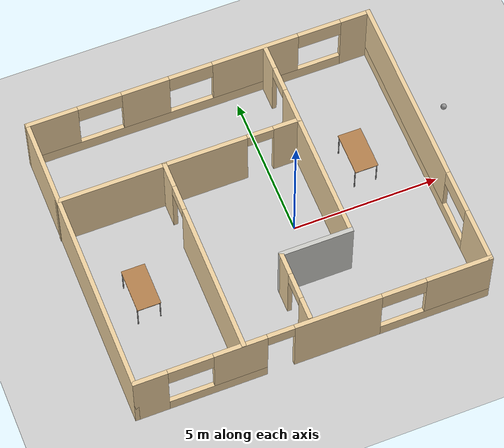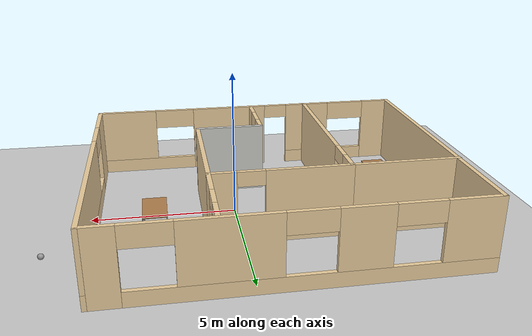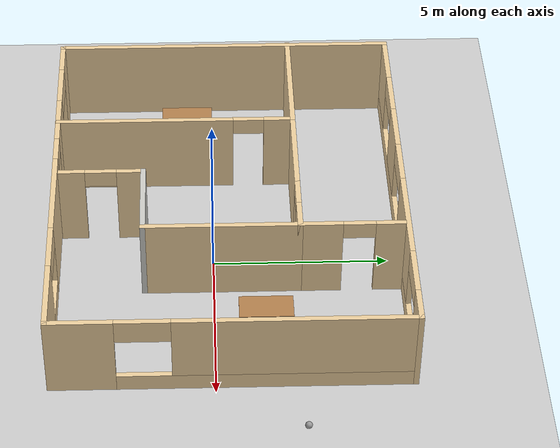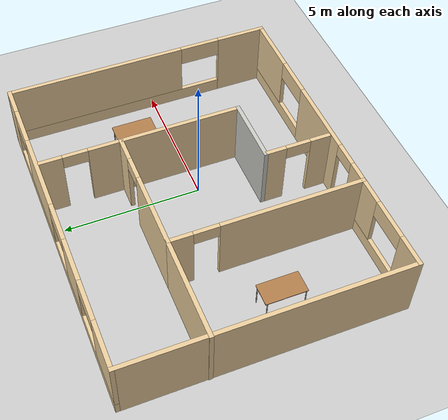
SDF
<sdf version="1.6">
 <world name="default">
  <plugin name="welcome_message" filename="libwelcome_message.so"/>
  <light name="sun" type="directional">
   <pose>0 0 10 0 -0 0</pose>
   <diffuse>0.8 0.8 0.8 1</diffuse>
   <specular>0.2 0.2 0.2 1</specular>
   <attenuation>
    <range>1000</range>
    <constant>0.9</constant>
    <linear>0.01</linear>
    <quadratic>0.001</quadratic>
   </attenuation>
   <direction>-0.5 0.1 -0.9</direction>
  </light>
  <model name="ground_plane">
   <static>1</static>
   <link name="link">
    <collision name="collision">
     <geometry><plane><normal>0 0 1</normal><size>100 100</size></plane></geometry>
     <surface><friction><ode><mu>100</mu><mu2>50</mu2></ode></friction></surface>
    </collision>
    <visual name="visual">
     <cast_shadows>0</cast_shadows>
     <geometry><plane><normal>0 0 1</normal><size>100 100</size></plane></geometry>
     <material>
      <script><uri>file://media/materials/scripts/gazebo.material</uri><name>Gazebo/Grey</name></script>
     </material>
    </visual>
   </link>
  </model>
  <gravity>0 0 -9.8</gravity>
  <magnetic_field>6e-06 2.3e-05 -4.2e-05</magnetic_field>
  <atmosphere type="adiabatic"/>
  <physics name="default_physics" default="0" type="ode">
   <max_step_size>0.001</max_step_size>
   <real_time_factor>1</real_time_factor>
   <real_time_update_rate>1000</real_time_update_rate>
  </physics>
  <scene><ambient>0.4 0.4 0.4 1</ambient><background>0.7 0.7 0.7 1</background><shadows>1</shadows></scene>
  <spherical_coordinates>
   <surface_model>EARTH_WGS84</surface_model>
   <latitude_deg>0</latitude_deg>
   <longitude_deg>0</longitude_deg>
   <elevation>0</elevation>
   <heading_deg>0</heading_deg>
  </spherical_coordinates>
  <model name="Building">
   <pose>-1.17107 0.46113 0 0 -0 0</pose>
   <link name="Wall_10">
    <pose>-2.33489 -1.48554 0 0 -0 1.5708</pose>
    <visual name="Wall_10_Visual_0">
     <pose>-0.911827 0 1.25 0 -0 0</pose>
     <geometry><box><size>5.17635 0.15 2.5</size></box></geometry>
     <material>
      <script><uri>file://media/materials/scripts/gazebo.material</uri><name>Gazebo/Grey</name></script>
      <ambient>0.921569 0.807843 0.615686 1</ambient>
     </material>
     <meta><layer>0</layer></meta>
    </visual>
    <collision name="Wall_10_Collision_0">
     <geometry><box><size>5.17635 0.15 2.5</size></box></geometry>
     <pose>-0.911827 0 1.25 0 -0 0</pose>
    </collision>
    <visual name="Wall_10_Visual_1">
     <pose>3.03817 0 1.25 0 -0 0</pose>
     <geometry><box><size>0.923654 0.15 2.5</size></box></geometry>
     <material>
      <script><uri>file://media/materials/scripts/gazebo.material</uri><name>Gazebo/Grey</name></script>
      <ambient>0.921569 0.807843 0.615686 1</ambient>
     </material>
     <meta><layer>0</layer></meta>
    </visual>
    <collision name="Wall_10_Collision_1">
     <geometry><box><size>0.923654 0.15 2.5</size></box></geometry>
     <pose>3.03817 0 1.25 0 -0 0</pose>
    </collision>
    <visual name="Wall_10_Visual_2">
     <pose>2.12635 0 2.25 0 -0 0</pose>
     <geometry><box><size>0.9 0.15 0.5</size></box></geometry>
     <material>
      <script><uri>file://media/materials/scripts/gazebo.material</uri><name>Gazebo/Grey</name></script>
      <ambient>0.921569 0.807843 0.615686 1</ambient>
     </material>
     <meta><layer>0</layer></meta>
    </visual>
    <collision name="Wall_10_Collision_2">
     <geometry><box><size>0.9 0.15 0.5</size></box></geometry>
     <pose>2.12635 0 2.25 0 -0 0</pose>
    </collision>
   </link>
   <link name="Wall_11">
    <collision name="Wall_11_Collision">
     <geometry><box><size>3.75 0.15 2.5</size></box></geometry>
     <pose>0 0 1.25 0 -0 0</pose>
    </collision>
    <visual name="Wall_11_Visual">
     <pose>0 0 1.25 0 -0 0</pose>
     <geometry><box><size>3.75 0.15 2.5</size></box></geometry>
     <material>
      <script><uri>file://media/materials/scripts/gazebo.material</uri><name>Gazebo/Grey</name></script>
      <ambient>0.921569 0.807843 0.615686 1</ambient>
     </material>
     <meta><layer>0</layer></meta>
    </visual>
    <pose>-4.13489 1.93946 0 0 -0 3.14159</pose>
   </link>
   <link name="Wall_13">
    <pose>-0.034892 1.93946 0 0 -0 0</pose>
    <visual name="Wall_13_Visual_0">
     <pose>-0.933301 0 1.25 0 -0 0</pose>
     <geometry><box><size>2.8834 0.15 2.5</size></box></geometry>
     <material>
      <script><uri>file://media/materials/scripts/gazebo.material</uri><name>Gazebo/Grey</name></script>
      <ambient>0.921569 0.807843 0.615686 1</ambient>
     </material>
     <meta><layer>0</layer></meta>
    </visual>
    <collision name="Wall_13_Collision_0">
     <geometry><box><size>2.8834 0.15 2.5</size></box></geometry>
     <pose>-0.933301 0 1.25 0 -0 0</pose>
    </collision>
    <visual name="Wall_13_Visual_1">
     <pose>1.8917 0 1.25 0 -0 0</pose>
     <geometry><box><size>0.966602 0.15 2.5</size></box></geometry>
     <material>
      <script><uri>file://media/materials/scripts/gazebo.material</uri><name>Gazebo/Grey</name></script>
      <ambient>0.921569 0.807843 0.615686 1</ambient>
     </material>
     <meta><layer>0</layer></meta>
    </visual>
    <collision name="Wall_13_Collision_1">
     <geometry><box><size>0.966602 0.15 2.5</size></box></geometry>
     <pose>1.8917 0 1.25 0 -0 0</pose>
    </collision>
    <visual name="Wall_13_Visual_2">
     <pose>0.958398 0 2.25 0 -0 0</pose>
     <geometry><box><size>0.9 0.15 0.5</size></box></geometry>
     <material>
      <script><uri>file://media/materials/scripts/gazebo.material</uri><name>Gazebo/Grey</name></script>
      <ambient>0.921569 0.807843 0.615686 1</ambient>
     </material>
     <meta><layer>0</layer></meta>
    </visual>
    <collision name="Wall_13_Collision_2">
     <geometry><box><size>0.9 0.15 0.5</size></box></geometry>
     <pose>0.958398 0 2.25 0 -0 0</pose>
    </collision>
   </link>
   <link name="Wall_14">
    <pose>2.26511 3.36446 0 0 -0 1.5708</pose>
    <visual name="Wall_14_Visual_0">
     <pose>-0.868536 0 1.25 0 -0 0</pose>
     <geometry><box><size>1.26293 0.15 2.5</size></box></geometry>
     <material>
      <script><uri>file://media/materials/scripts/gazebo.material</uri><name>Gazebo/Grey</name></script>
      <ambient>0.921569 0.807843 0.615686 1</ambient>
     </material>
     <meta><layer>0</layer></meta>
    </visual>
    <collision name="Wall_14_Collision_0">
     <geometry><box><size>1.26293 0.15 2.5</size></box></geometry>
     <pose>-0.868536 0 1.25 0 -0 0</pose>
    </collision>
    <visual name="Wall_14_Visual_1">
     <pose>1.08146 0 1.25 0 -0 0</pose>
     <geometry><box><size>0.837073 0.15 2.5</size></box></geometry>
     <material>
      <script><uri>file://media/materials/scripts/gazebo.material</uri><name>Gazebo/Grey</name></script>
      <ambient>0.921569 0.807843 0.615686 1</ambient>
     </material>
     <meta><layer>0</layer></meta>
    </visual>
    <collision name="Wall_14_Collision_1">
     <geometry><box><size>0.837073 0.15 2.5</size></box></geometry>
     <pose>1.08146 0 1.25 0 -0 0</pose>
    </collision>
    <visual name="Wall_14_Visual_2">
     <pose>0.212927 0 2.25 0 -0 0</pose>
     <geometry><box><size>0.9 0.15 0.5</size></box></geometry>
     <material>
      <script><uri>file://media/materials/scripts/gazebo.material</uri><name>Gazebo/Grey</name></script>
      <ambient>0.921569 0.807843 0.615686 1</ambient>
     </material>
     <meta><layer>0</layer></meta>
    </visual>
    <collision name="Wall_14_Collision_2">
     <geometry><box><size>0.9 0.15 0.5</size></box></geometry>
     <pose>0.212927 0 2.25 0 -0 0</pose>
    </collision>
   </link>
   <link name="Wall_16">
    <collision name="Wall_16_Collision">
     <geometry><box><size>4.5 0.15 2.5</size></box></geometry>
     <pose>0 0 1.25 0 -0 0</pose>
    </collision>
    <visual name="Wall_16_Visual">
     <pose>0 0 1.25 0 -0 0</pose>
     <geometry><box><size>4.5 0.15 2.5</size></box></geometry>
     <material>
      <script><uri>file://media/materials/scripts/gazebo.material</uri><name>Gazebo/Grey</name></script>
      <ambient>0.921569 0.807843 0.615686 1</ambient>
     </material>
     <meta><layer>0</layer></meta>
    </visual>
    <pose>2.26511 -0.235537 0 0 0 -1.5708</pose>
   </link>
   <link name="Wall_17">
    <collision name="Wall_17_Collision">
     <geometry><box><size>2.5 0.15 2.5</size></box></geometry>
     <pose>0 0 1.25 0 -0 0</pose>
    </collision>
    <visual name="Wall_17_Visual">
     <pose>0 0 1.25 0 -0 0</pose>
     <geometry><box><size>2.5 0.15 2.5</size></box></geometry>
     <material>
      <script><uri>file://media/materials/scripts/gazebo.material</uri><name>Gazebo/CeilingTiled</name></script>
      <ambient>0.921569 0.807843 0.615686 1</ambient>
     </material>
     <meta><layer>0</layer></meta>
    </visual>
    <pose>1.09011 -2.41054 0 0 -0 3.14159</pose>
   </link>
   <link name="Wall_18">
    <pose>-0.084893 -3.58554 0 0 0 -1.5708</pose>
    <visual name="Wall_18_Visual_0">
     <pose>-0.831134 0 1.25 0 -0 0</pose>
     <geometry><box><size>0.837732 0.15 2.5</size></box></geometry>
     <material>
      <script><uri>file://media/materials/scripts/gazebo.material</uri><name>Gazebo/Grey</name></script>
      <ambient>0.921569 0.807843 0.615686 1</ambient>
     </material>
     <meta><layer>0</layer></meta>
    </visual>
    <collision name="Wall_18_Collision_0">
     <geometry><box><size>0.837732 0.15 2.5</size></box></geometry>
     <pose>-0.831134 0 1.25 0 -0 0</pose>
    </collision>
    <visual name="Wall_18_Visual_1">
     <pose>0.868866 0 1.25 0 -0 0</pose>
     <geometry><box><size>0.762268 0.15 2.5</size></box></geometry>
     <material>
      <script><uri>file://media/materials/scripts/gazebo.material</uri><name>Gazebo/Grey</name></script>
      <ambient>0.921569 0.807843 0.615686 1</ambient>
     </material>
     <meta><layer>0</layer></meta>
    </visual>
    <collision name="Wall_18_Collision_1">
     <geometry><box><size>0.762268 0.15 2.5</size></box></geometry>
     <pose>0.868866 0 1.25 0 -0 0</pose>
    </collision>
    <visual name="Wall_18_Visual_2">
     <pose>0.037732 0 2.25 0 -0 0</pose>
     <geometry><box><size>0.9 0.15 0.5</size></box></geometry>
     <material>
      <script><uri>file://media/materials/scripts/gazebo.material</uri><name>Gazebo/Grey</name></script>
      <ambient>0.921569 0.807843 0.615686 1</ambient>
     </material>
     <meta><layer>0</layer></meta>
    </visual>
    <collision name="Wall_18_Collision_2">
     <geometry><box><size>0.9 0.15 0.5</size></box></geometry>
     <pose>0.037732 0 2.25 0 -0 0</pose>
    </collision>
   </link>
   <link name="Wall_5">
    <collision name="Wall_5_Collision">
     <geometry><box><size>10 0.15 2.5</size></box></geometry>
     <pose>0 0 1.25 0 -0 0</pose>
    </collision>
    <visual name="Wall_5_Visual">
     <pose>0 0 1.25 0 -0 0</pose>
     <geometry><box><size>10 0.15 2.5</size></box></geometry>
     <material>
      <script><uri>file://media/materials/scripts/gazebo.material</uri><name>Gazebo/Grey</name></script>
      <ambient>0.921569 0.807843 0.615686 1</ambient>
     </material>
     <meta><layer>0</layer></meta>
    </visual>
    <pose>-5.91511 0 0 0 0 -1.5708</pose>
   </link>
   <link name="Wall_6">
    <pose>0.009892 -4.925 0 0 -0 0</pose>
    <visual name="Wall_6_Visual_0">
     <pose>-5.42233 0 1.25 0 -0 0</pose>
     <geometry><box><size>1.15534 0.15 2.5</size></box></geometry>
     <material>
      <script><uri>file://media/materials/scripts/gazebo.material</uri><name>Gazebo/Grey</name></script>
      <ambient>0.921569 0.807843 0.615686 1</ambient>
     </material>
     <meta><layer>0</layer></meta>
    </visual>
    <collision name="Wall_6_Collision_0">
     <geometry><box><size>1.15534 0.15 2.5</size></box></geometry>
     <pose>-5.42233 0 1.25 0 -0 0</pose>
    </collision>
    <visual name="Wall_6_Visual_1">
     <pose>0.793785 0 1.25 0 -0 0</pose>
     <geometry><box><size>2.92328 0.15 2.5</size></box></geometry>
     <material>
      <script><uri>file://media/materials/scripts/gazebo.material</uri><name>Gazebo/Grey</name></script>
      <ambient>0.921569 0.807843 0.615686 1</ambient>
     </material>
     <meta><layer>0</layer></meta>
    </visual>
    <collision name="Wall_6_Collision_1">
     <geometry><box><size>2.92328 0.15 2.5</size></box></geometry>
     <pose>0.793785 0 1.25 0 -0 0</pose>
    </collision>
    <visual name="Wall_6_Visual_2">
     <pose>-3.20626 0 0.25 0 -0 0</pose>
     <geometry><box><size>3.27681 0.15 0.5</size></box></geometry>
     <material>
      <script><uri>file://media/materials/scripts/gazebo.material</uri><name>Gazebo/Grey</name></script>
      <ambient>0.921569 0.807843 0.615686 1</ambient>
     </material>
     <meta><layer>0</layer></meta>
    </visual>
    <collision name="Wall_6_Collision_2">
     <geometry><box><size>3.27681 0.15 0.5</size></box></geometry>
     <pose>-3.20626 0 0.25 0 -0 0</pose>
    </collision>
    <visual name="Wall_6_Visual_3">
     <pose>4.12771 0 0.25 0 -0 0</pose>
     <geometry><box><size>3.74457 0.15 0.5</size></box></geometry>
     <material>
      <script><uri>file://media/materials/scripts/gazebo.material</uri><name>Gazebo/Grey</name></script>
      <ambient>0.921569 0.807843 0.615686 1</ambient>
     </material>
     <meta><layer>0</layer></meta>
    </visual>
    <collision name="Wall_6_Collision_3">
     <geometry><box><size>3.74457 0.15 0.5</size></box></geometry>
     <pose>4.12771 0 0.25 0 -0 0</pose>
    </collision>
    <visual name="Wall_6_Visual_4">
     <pose>-2.45626 0 1.5 0 -0 0</pose>
     <geometry><box><size>1.77681 0.15 2</size></box></geometry>
     <material>
      <script><uri>file://media/materials/scripts/gazebo.material</uri><name>Gazebo/Grey</name></script>
      <ambient>0.921569 0.807843 0.615686 1</ambient>
     </material>
     <meta><layer>0</layer></meta>
    </visual>
    <collision name="Wall_6_Collision_4">
     <geometry><box><size>1.77681 0.15 2</size></box></geometry>
     <pose>-2.45626 0 1.5 0 -0 0</pose>
    </collision>
    <visual name="Wall_6_Visual_5">
     <pose>-2.45626 0 1.5 0 -0 0</pose>
     <geometry><box><size>1.77681 0.15 2</size></box></geometry>
     <material>
      <script><uri>file://media/materials/scripts/gazebo.material</uri><name>Gazebo/Grey</name></script>
      <ambient>0.921569 0.807843 0.615686 1</ambient>
     </material>
     <meta><layer>0</layer></meta>
    </visual>
    <collision name="Wall_6_Collision_5">
     <geometry><box><size>1.77681 0.15 2</size></box></geometry>
     <pose>-2.45626 0 1.5 0 -0 0</pose>
    </collision>
    <visual name="Wall_6_Visual_6">
     <pose>4.87771 0 1.5 0 -0 0</pose>
     <geometry><box><size>2.24457 0.15 2</size></box></geometry>
     <material>
      <script><uri>file://media/materials/scripts/gazebo.material</uri><name>Gazebo/Grey</name></script>
      <ambient>0.921569 0.807843 0.615686 1</ambient>
     </material>
     <meta><layer>0</layer></meta>
    </visual>
    <collision name="Wall_6_Collision_6">
     <geometry><box><size>2.24457 0.15 2</size></box></geometry>
     <pose>4.87771 0 1.5 0 -0 0</pose>
    </collision>
    <visual name="Wall_6_Visual_7">
     <pose>-4.09466 0 2.15 0 -0 0</pose>
     <geometry><box><size>1.5 0.15 0.7</size></box></geometry>
     <material>
      <script><uri>file://media/materials/scripts/gazebo.material</uri><name>Gazebo/Grey</name></script>
      <ambient>0.921569 0.807843 0.615686 1</ambient>
     </material>
     <meta><layer>0</layer></meta>
    </visual>
    <collision name="Wall_6_Collision_7">
     <geometry><box><size>1.5 0.15 0.7</size></box></geometry>
     <pose>-4.09466 0 2.15 0 -0 0</pose>
    </collision>
    <visual name="Wall_6_Visual_8">
     <pose>3.00543 0 2.15 0 -0 0</pose>
     <geometry><box><size>1.5 0.15 0.7</size></box></geometry>
     <material>
      <script><uri>file://media/materials/scripts/gazebo.material</uri><name>Gazebo/Grey</name></script>
      <ambient>0.921569 0.807843 0.615686 1</ambient>
     </material>
     <meta><layer>0</layer></meta>
    </visual>
    <collision name="Wall_6_Collision_8">
     <geometry><box><size>1.5 0.15 0.7</size></box></geometry>
     <pose>3.00543 0 2.15 0 -0 0</pose>
    </collision>
    <visual name="Wall_6_Visual_9">
     <pose>-1.11786 0 2.25 0 -0 0</pose>
     <geometry><box><size>0.9 0.15 0.5</size></box></geometry>
     <material>
      <script><uri>file://media/materials/scripts/gazebo.material</uri><name>Gazebo/Grey</name></script>
      <ambient>0.921569 0.807843 0.615686 1</ambient>
     </material>
     <meta><layer>0</layer></meta>
    </visual>
    <collision name="Wall_6_Collision_9">
     <geometry><box><size>0.9 0.15 0.5</size></box></geometry>
     <pose>-1.11786 0 2.25 0 -0 0</pose>
    </collision>
    <visual name="Wall_6_Visual_10">
     <pose>-1.11786 0 2.25 0 -0 0</pose>
     <geometry><box><size>0.9 0.15 0.5</size></box></geometry>
     <material>
      <script><uri>file://media/materials/scripts/gazebo.material</uri><name>Gazebo/Grey</name></script>
      <ambient>0.921569 0.807843 0.615686 1</ambient>
     </material>
     <meta><layer>0</layer></meta>
    </visual>
    <collision name="Wall_6_Collision_10">
     <geometry><box><size>0.9 0.15 0.5</size></box></geometry>
     <pose>-1.11786 0 2.25 0 -0 0</pose>
    </collision>
   </link>
   <link name="Wall_7">
    <pose>5.93489 0 0 0 -0 1.5708</pose>
    <visual name="Wall_7_Visual_0">
     <pose>-4.06311 0 1.25 0 -0 0</pose>
     <geometry><box><size>1.87377 0.15 2.5</size></box></geometry>
     <material>
      <script><uri>file://media/materials/scripts/gazebo.material</uri><name>Gazebo/Grey</name></script>
      <ambient>0.921569 0.807843 0.615686 1</ambient>
     </material>
     <meta><layer>0</layer></meta>
    </visual>
    <collision name="Wall_7_Collision_0">
     <geometry><box><size>1.87377 0.15 2.5</size></box></geometry>
     <pose>-4.06311 0 1.25 0 -0 0</pose>
    </collision>
    <visual name="Wall_7_Visual_1">
     <pose>0.936887 0 0.25 0 -0 0</pose>
     <geometry><box><size>8.12623 0.15 0.5</size></box></geometry>
     <material>
      <script><uri>file://media/materials/scripts/gazebo.material</uri><name>Gazebo/Grey</name></script>
      <ambient>0.921569 0.807843 0.615686 1</ambient>
     </material>
     <meta><layer>0</layer></meta>
    </visual>
    <collision name="Wall_7_Collision_1">
     <geometry><box><size>8.12623 0.15 0.5</size></box></geometry>
     <pose>0.936887 0 0.25 0 -0 0</pose>
    </collision>
    <visual name="Wall_7_Visual_2">
     <pose>1.68689 0 1.5 0 -0 0</pose>
     <geometry><box><size>6.62623 0.15 2</size></box></geometry>
     <material>
      <script><uri>file://media/materials/scripts/gazebo.material</uri><name>Gazebo/Grey</name></script>
      <ambient>0.921569 0.807843 0.615686 1</ambient>
     </material>
     <meta><layer>0</layer></meta>
    </visual>
    <collision name="Wall_7_Collision_2">
     <geometry><box><size>6.62623 0.15 2</size></box></geometry>
     <pose>1.68689 0 1.5 0 -0 0</pose>
    </collision>
    <visual name="Wall_7_Visual_3">
     <pose>-2.37623 0 2.15 0 -0 0</pose>
     <geometry><box><size>1.5 0.15 0.7</size></box></geometry>
     <material>
      <script><uri>file://media/materials/scripts/gazebo.material</uri><name>Gazebo/Grey</name></script>
      <ambient>0.921569 0.807843 0.615686 1</ambient>
     </material>
     <meta><layer>0</layer></meta>
    </visual>
    <collision name="Wall_7_Collision_3">
     <geometry><box><size>1.5 0.15 0.7</size></box></geometry>
     <pose>-2.37623 0 2.15 0 -0 0</pose>
    </collision>
   </link>
   <link name="Wall_8">
    <pose>0.009892 4.925 0 0 -0 3.14159</pose>
    <visual name="Wall_8_Visual_0">
     <pose>-5.46101 0 1.25 0 -0 0</pose>
     <geometry><box><size>1.07799 0.15 2.5</size></box></geometry>
     <material>
      <script><uri>file://media/materials/scripts/gazebo.material</uri><name>Gazebo/Grey</name></script>
      <ambient>0.921569 0.807843 0.615686 1</ambient>
     </material>
     <meta><layer>0</layer></meta>
    </visual>
    <collision name="Wall_8_Collision_0">
     <geometry><box><size>1.07799 0.15 2.5</size></box></geometry>
     <pose>-5.46101 0 1.25 0 -0 0</pose>
    </collision>
    <visual name="Wall_8_Visual_1">
     <pose>0.538993 0 0.25 0 -0 0</pose>
     <geometry><box><size>10.922 0.15 0.5</size></box></geometry>
     <material>
      <script><uri>file://media/materials/scripts/gazebo.material</uri><name>Gazebo/Grey</name></script>
      <ambient>0.921569 0.807843 0.615686 1</ambient>
     </material>
     <meta><layer>0</layer></meta>
    </visual>
    <collision name="Wall_8_Collision_1">
     <geometry><box><size>10.922 0.15 0.5</size></box></geometry>
     <pose>0.538993 0 0.25 0 -0 0</pose>
    </collision>
    <visual name="Wall_8_Visual_2">
     <pose>-1.91929 0 1.5 0 -0 0</pose>
     <geometry><box><size>3.00544 0.15 2</size></box></geometry>
     <material>
      <script><uri>file://media/materials/scripts/gazebo.material</uri><name>Gazebo/Grey</name></script>
      <ambient>0.921569 0.807843 0.615686 1</ambient>
     </material>
     <meta><layer>0</layer></meta>
    </visual>
    <collision name="Wall_8_Collision_2">
     <geometry><box><size>3.00544 0.15 2</size></box></geometry>
     <pose>-1.91929 0 1.5 0 -0 0</pose>
    </collision>
    <visual name="Wall_8_Visual_3">
     <pose>1.90229 0 1.5 0 -0 0</pose>
     <geometry><box><size>1.63772 0.15 2</size></box></geometry>
     <material>
      <script><uri>file://media/materials/scripts/gazebo.material</uri><name>Gazebo/Grey</name></script>
      <ambient>0.921569 0.807843 0.615686 1</ambient>
     </material>
     <meta><layer>0</layer></meta>
    </visual>
    <collision name="Wall_8_Collision_3">
     <geometry><box><size>1.63772 0.15 2</size></box></geometry>
     <pose>1.90229 0 1.5 0 -0 0</pose>
    </collision>
    <visual name="Wall_8_Visual_4">
     <pose>5.11057 0 1.5 0 -0 0</pose>
     <geometry><box><size>1.77886 0.15 2</size></box></geometry>
     <material>
      <script><uri>file://media/materials/scripts/gazebo.material</uri><name>Gazebo/Grey</name></script>
      <ambient>0.921569 0.807843 0.615686 1</ambient>
     </material>
     <meta><layer>0</layer></meta>
    </visual>
    <collision name="Wall_8_Collision_4">
     <geometry><box><size>1.77886 0.15 2</size></box></geometry>
     <pose>5.11057 0 1.5 0 -0 0</pose>
    </collision>
    <visual name="Wall_8_Visual_5">
     <pose>-4.17201 0 2.15 0 -0 0</pose>
     <geometry><box><size>1.5 0.15 0.7</size></box></geometry>
     <material>
      <script><uri>file://media/materials/scripts/gazebo.material</uri><name>Gazebo/Grey</name></script>
      <ambient>0.921569 0.807843 0.615686 1</ambient>
     </material>
     <meta><layer>0</layer></meta>
    </visual>
    <collision name="Wall_8_Collision_5">
     <geometry><box><size>1.5 0.15 0.7</size></box></geometry>
     <pose>-4.17201 0 2.15 0 -0 0</pose>
    </collision>
    <visual name="Wall_8_Visual_6">
     <pose>0.333427 0 2.15 0 -0 0</pose>
     <geometry><box><size>1.5 0.15 0.7</size></box></geometry>
     <material>
      <script><uri>file://media/materials/scripts/gazebo.material</uri><name>Gazebo/Grey</name></script>
      <ambient>0.921569 0.807843 0.615686 1</ambient>
     </material>
     <meta><layer>0</layer></meta>
    </visual>
    <collision name="Wall_8_Collision_6">
     <geometry><box><size>1.5 0.15 0.7</size></box></geometry>
     <pose>0.333427 0 2.15 0 -0 0</pose>
    </collision>
    <visual name="Wall_8_Visual_7">
     <pose>3.47114 0 2.15 0 -0 0</pose>
     <geometry><box><size>1.5 0.15 0.7</size></box></geometry>
     <material>
      <script><uri>file://media/materials/scripts/gazebo.material</uri><name>Gazebo/Grey</name></script>
      <ambient>0.921569 0.807843 0.615686 1</ambient>
     </material>
     <meta><layer>0</layer></meta>
    </visual>
    <collision name="Wall_8_Collision_7">
     <geometry><box><size>1.5 0.15 0.7</size></box></geometry>
     <pose>3.47114 0 2.15 0 -0 0</pose>
    </collision>
   </link>
   <static>1</static>
  </model>
  <model name="table">
   <static>1</static>
   <link name="link">
    <collision name="surface">
     <pose>0 0 1 0 -0 0</pose>
     <geometry><box><size>1.5 0.8 0.03</size></box></geometry>
     <surface><friction><ode><mu>0.6</mu><mu2>0.6</mu2></ode></friction></surface>
    </collision>
    <visual name="visual1">
     <pose>0 0 1 0 -0 0</pose>
     <geometry><box><size>1.5 0.8 0.03</size></box></geometry>
     <material>
      <script><uri>file://media/materials/scripts/gazebo.material</uri><name>Gazebo/Wood</name></script>
     </material>
    </visual>
    <collision name="front_left_leg">
     <pose>0.68 0.38 0.5 0 -0 0</pose>
     <geometry><cylinder><radius>0.02</radius><length>1</length></cylinder></geometry>
    </collision>
    <visual name="front_left_leg">
     <pose>0.68 0.38 0.5 0 -0 0</pose>
     <geometry><cylinder><radius>0.02</radius><length>1</length></cylinder></geometry>
     <material>
      <script><uri>file://media/materials/scripts/gazebo.material</uri><name>Gazebo/Grey</name></script>
     </material>
    </visual>
    <collision name="front_right_leg">
     <pose>0.68 -0.38 0.5 0 -0 0</pose>
     <geometry><cylinder><radius>0.02</radius><length>1</length></cylinder></geometry>
    </collision>
    <visual name="front_right_leg">
     <pose>0.68 -0.38 0.5 0 -0 0</pose>
     <geometry><cylinder><radius>0.02</radius><length>1</length></cylinder></geometry>
     <material>
      <script><uri>file://media/materials/scripts/gazebo.material</uri><name>Gazebo/Grey</name></script>
     </material>
    </visual>
    <collision name="back_right_leg">
     <pose>-0.68 -0.38 0.5 0 -0 0</pose>
     <geometry><cylinder><radius>0.02</radius><length>1</length></cylinder></geometry>
    </collision>
    <visual name="back_right_leg">
     <pose>-0.68 -0.38 0.5 0 -0 0</pose>
     <geometry><cylinder><radius>0.02</radius><length>1</length></cylinder></geometry>
     <material>
      <script><uri>file://media/materials/scripts/gazebo.material</uri><name>Gazebo/Grey</name></script>
     </material>
    </visual>
    <collision name="back_left_leg">
     <pose>-0.68 0.38 0.5 0 -0 0</pose>
     <geometry><cylinder><radius>0.02</radius><length>1</length></cylinder></geometry>
    </collision>
    <visual name="back_left_leg">
     <pose>-0.68 0.38 0.5 0 -0 0</pose>
     <geometry><cylinder><radius>0.02</radius><length>1</length></cylinder></geometry>
     <material>
      <script><uri>file://media/materials/scripts/gazebo.material</uri><name>Gazebo/Grey</name></script>
     </material>
    </visual>
   </link>
   <pose>2.79349 1.41579 0 0 -0 1.5707</pose>
  </model>
  <model name="table_clone">
   <static>1</static>
   <link name="link">
    <collision name="surface">
     <pose>0 0 1 0 -0 0</pose>
     <geometry><box><size>1.5 0.8 0.03</size></box></geometry>
     <surface><friction><ode><mu>0.6</mu><mu2>0.6</mu2></ode></friction></surface>
    </collision>
    <visual name="visual1">
     <pose>0 0 1 0 -0 0</pose>
     <geometry><box><size>1.5 0.8 0.03</size></box></geometry>
     <material>
      <script><uri>file://media/materials/scripts/gazebo.material</uri><name>Gazebo/Wood</name></script>
     </material>
    </visual>
    <collision name="front_left_leg">
     <pose>0.68 0.38 0.5 0 -0 0</pose>
     <geometry><cylinder><radius>0.02</radius><length>1</length></cylinder></geometry>
    </collision>
    <visual name="front_left_leg">
     <pose>0.68 0.38 0.5 0 -0 0</pose>
     <geometry><cylinder><radius>0.02</radius><length>1</length></cylinder></geometry>
     <material>
      <script><uri>file://media/materials/scripts/gazebo.material</uri><name>Gazebo/Grey</name></script>
     </material>
    </visual>
    <collision name="front_right_leg">
     <pose>0.68 -0.38 0.5 0 -0 0</pose>
     <geometry><cylinder><radius>0.02</radius><length>1</length></cylinder></geometry>
    </collision>
    <visual name="front_right_leg">
     <pose>0.68 -0.38 0.5 0 -0 0</pose>
     <geometry><cylinder><radius>0.02</radius><length>1</length></cylinder></geometry>
     <material>
      <script><uri>file://media/materials/scripts/gazebo.material</uri><name>Gazebo/Grey</name></script>
     </material>
    </visual>
    <collision name="back_right_leg">
     <pose>-0.68 -0.38 0.5 0 -0 0</pose>
     <geometry><cylinder><radius>0.02</radius><length>1</length></cylinder></geometry>
    </collision>
    <visual name="back_right_leg">
     <pose>-0.68 -0.38 0.5 0 -0 0</pose>
     <geometry><cylinder><radius>0.02</radius><length>1</length></cylinder></geometry>
     <material>
      <script><uri>file://media/materials/scripts/gazebo.material</uri><name>Gazebo/Grey</name></script>
     </material>
    </visual>
    <collision name="back_left_leg">
     <pose>-0.68 0.38 0.5 0 -0 0</pose>
     <geometry><cylinder><radius>0.02</radius><length>1</length></cylinder></geometry>
    </collision>
    <visual name="back_left_leg">
     <pose>-0.68 0.38 0.5 0 -0 0</pose>
     <geometry><cylinder><radius>0.02</radius><length>1</length></cylinder></geometry>
     <material>
      <script><uri>file://media/materials/scripts/gazebo.material</uri><name>Gazebo/Grey</name></script>
     </material>
    </visual>
   </link>
   <pose>-5.51638 -0.697272 0 0 -0 1.5707</pose>
  </model>
  <model name="my_ball">
   <link name="link_0">
    <inertial>
     <mass>1</mass>
     <inertia><ixx>0.1</ixx><ixy>0</ixy><ixz>0</ixz><iyy>0.1</iyy><iyz>0</iyz><izz>0.1</izz></inertia>
    </inertial>
    <visual name="visual">
     <geometry><sphere><radius>0.1</radius></sphere></geometry>
     <material>
      <lighting>1</lighting>
      <script><uri>file://media/materials/scripts/gazebo.material</uri><name>Gazebo/Grey</name></script>
      <shader type="pixel"><normal_map>__default__</normal_map></shader>
      <ambient>1 1 1 1</ambient>
      <diffuse>1 1 1 1</diffuse>
      <specular>1 1 1 1</specular>
      <emissive>1 1 1 1</emissive>
     </material>
    </visual>
    <collision name="collision">
     <geometry><sphere><radius>0.1</radius></sphere></geometry>
     <surface>
      <friction>
       <ode><mu>1</mu><mu2>1</mu2><fdir1>0 0 0</fdir1><slip1>0</slip1><slip2>0</slip2></ode>
       <torsional>
        <coefficient>1</coefficient>
        <patch_radius>0</patch_radius>
        <surface_radius>0</surface_radius>
        <use_patch_radius>1</use_patch_radius>
        <ode><slip>0</slip></ode>
       </torsional>
      </friction>
      <bounce><restitution_coefficient>0</restitution_coefficient><threshold>1e+06</threshold></bounce>
      <contact>
       <collide_without_contact>0</collide_without_contact>
       <collide_without_contact_bitmask>1</collide_without_contact_bitmask>
       <collide_bitmask>1</collide_bitmask>
       <ode>
        <soft_cfm>0</soft_cfm>
        <soft_erp>0.2</soft_erp>
        <kp>1e+13</kp>
        <kd>1</kd>
        <max_vel>0.01</max_vel>
        <min_depth>0</min_depth>
       </ode>
       <bullet>
        <split_impulse>1</split_impulse>
        <split_impulse_penetration_threshold>-0.01</split_impulse_penetration_threshold>
        <soft_cfm>0</soft_cfm>
        <soft_erp>0.2</soft_erp>
        <kp>1e+13</kp>
        <kd>1</kd>
       </bullet>
      </contact>
     </surface>
    </collision>
   </link>
   <static>0</static>
   <pose>6.32374 2.41871 0.1 0 -0 0</pose>
  </model>
 </world>
</sdf>
